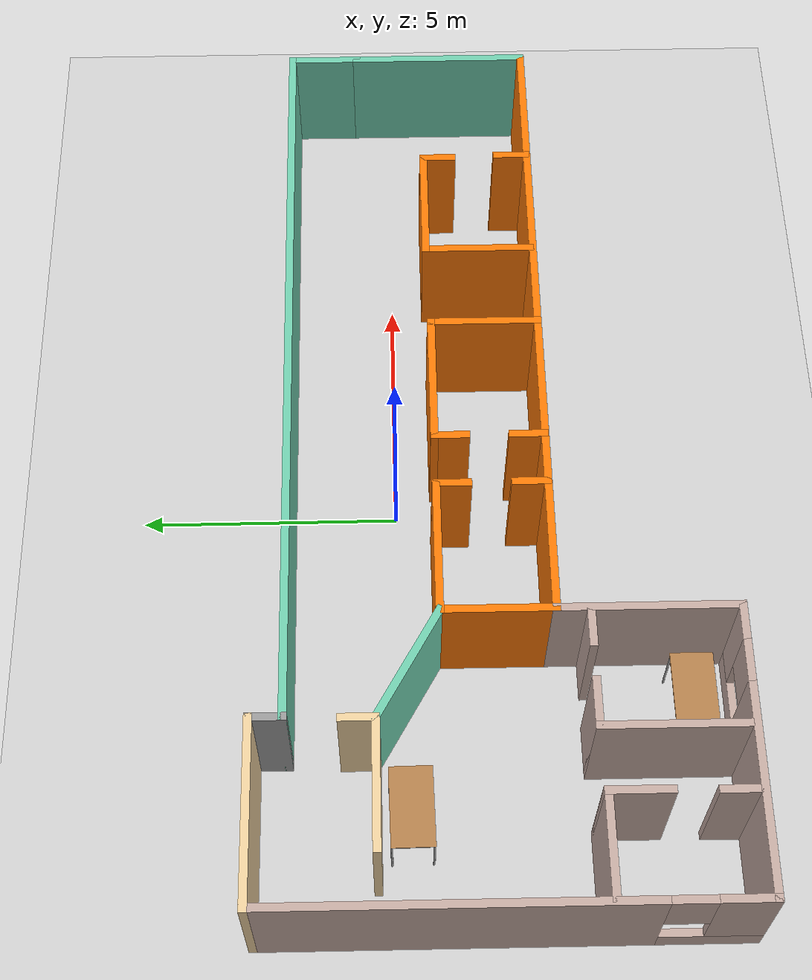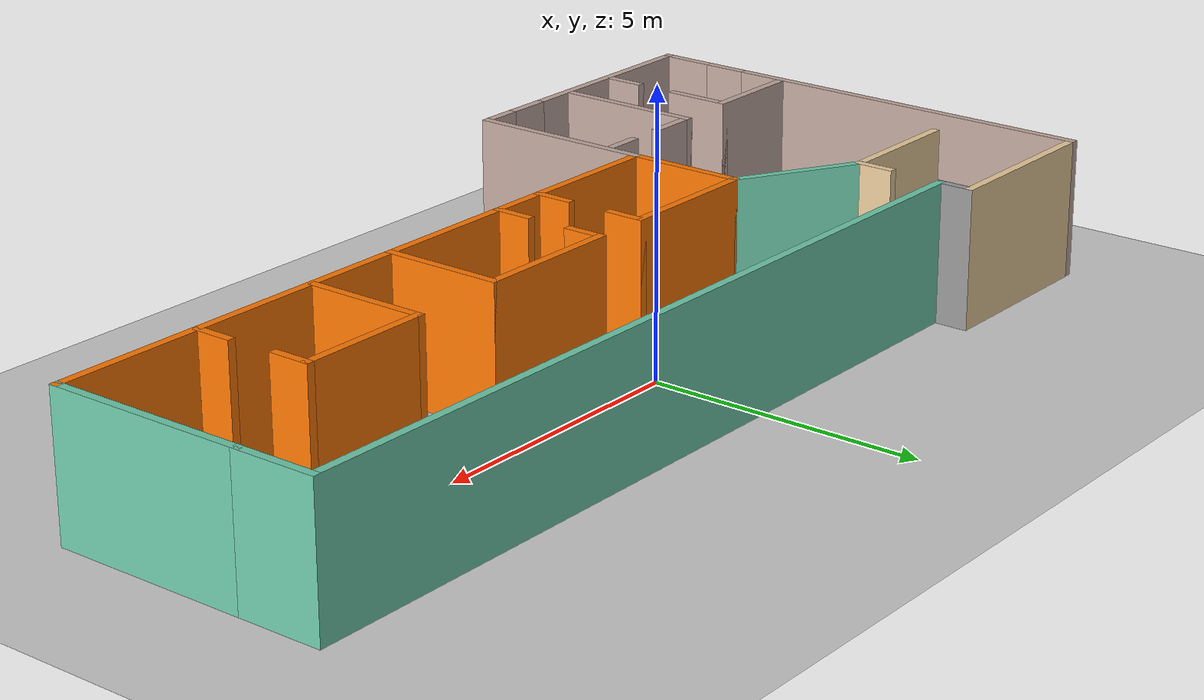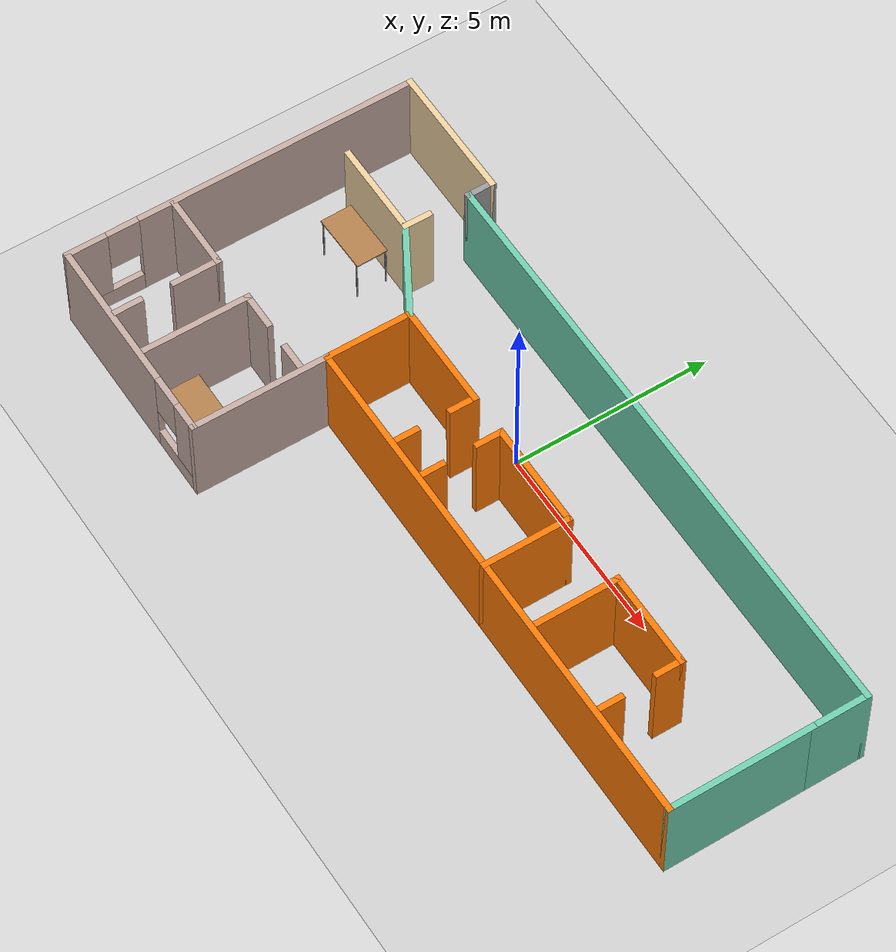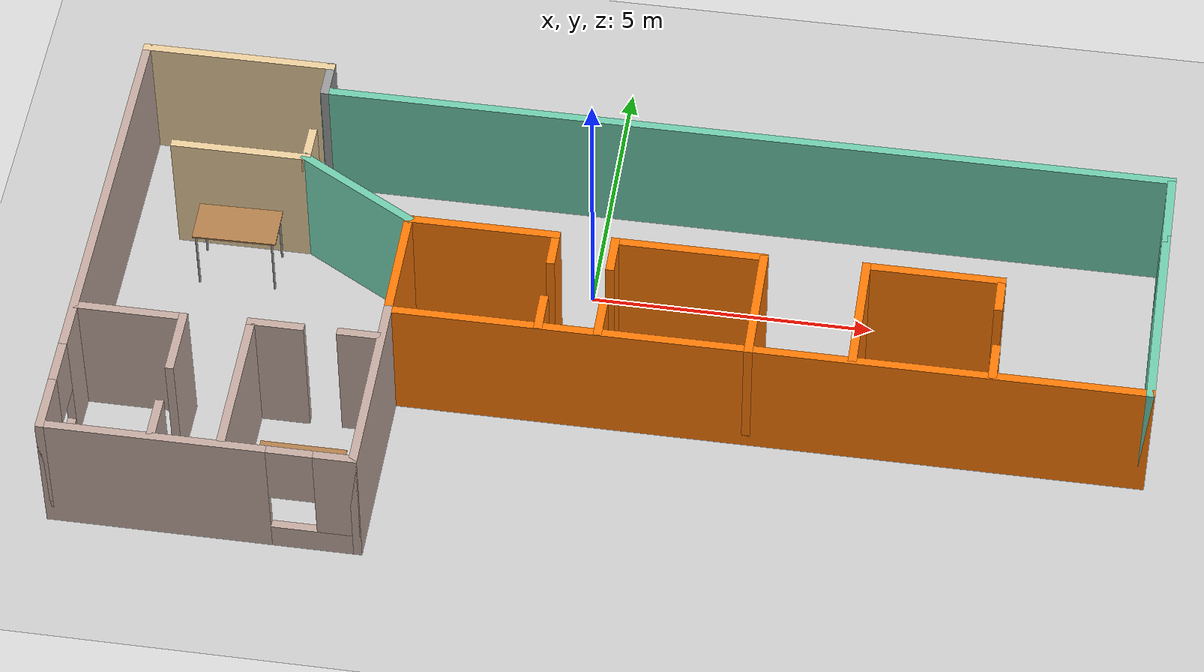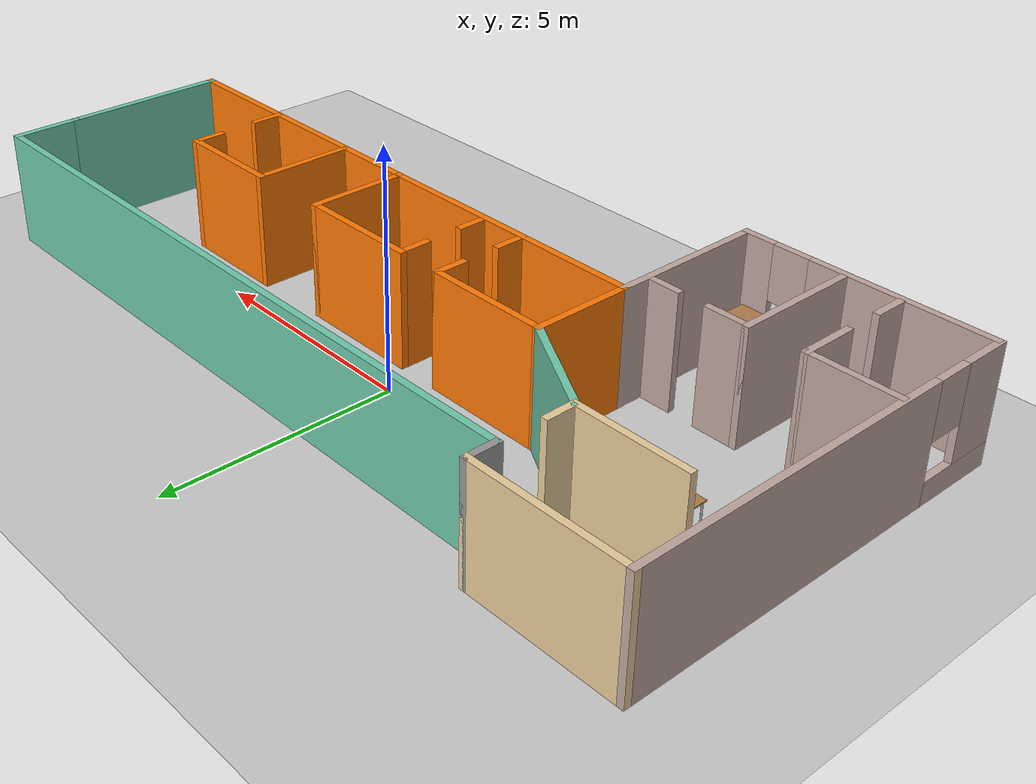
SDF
<sdf version="1.7">
 <world name="default">
  <model name="ground_plane">
   <static>1</static>
   <link name="link">
    <collision name="collision">
     <geometry><plane><normal>0 0 1</normal><size>100 100</size></plane></geometry>
     <surface>
      <contact><collide_bitmask>65535</collide_bitmask></contact>
      <friction><ode><mu>100</mu><mu2>50</mu2></ode></friction>
     </surface>
    </collision>
    <visual name="visual">
     <cast_shadows>0</cast_shadows>
     <geometry><plane><normal>0 0 1</normal><size>100 100</size></plane></geometry>
     <material>
      <script><uri>file://media/materials/scripts/gazebo.material</uri><name>Gazebo/Grey</name></script>
     </material>
    </visual>
   </link>
  </model>
  <model name="Building">
   <pose>0.744331 -1.77373 0 0 -0 0</pose>
   <link name="Wall_101">
    <collision name="Wall_101_Collision">
     <geometry><box><size>3.5 0.15 2.5</size></box></geometry>
     <pose>0 0 1.25 0 -0 0</pose>
    </collision>
    <visual name="Wall_101_Visual">
     <pose>0 0 1.25 0 -0 0</pose>
     <geometry><box><size>3.5 0.15 2.5</size></box></geometry>
     <material>
      <script><uri>file://media/materials/scripts/gazebo.material</uri><name>Gazebo/Grey</name></script>
      <ambient>0.921569 0.807843 0.615686 1</ambient>
     </material>
     <meta><layer>0</layer></meta>
    </visual>
    <pose>-7.55 4.425 0 0 -0 0</pose>
   </link>
   <link name="Wall_102">
    <collision name="Wall_102_Collision">
     <geometry><box><size>0.75 0.15 2.5</size></box></geometry>
     <pose>0 0 1.25 0 -0 0</pose>
    </collision>
    <visual name="Wall_102_Visual">
     <pose>0 0 1.25 0 -0 0</pose>
     <geometry><box><size>0.75 0.15 2.5</size></box></geometry>
     <material>
      <script><uri>file://media/materials/scripts/gazebo.material</uri><name>Gazebo/Grey</name></script>
      <ambient>1 1 1 1</ambient>
     </material>
     <meta><layer>0</layer></meta>
    </visual>
    <pose>-5.875 4.125 0 0 -0 -1.5708</pose>
   </link>
   <link name="Wall_109">
    <collision name="Wall_109_Collision">
     <geometry><box><size>2.5 0.15 2.5</size></box></geometry>
     <pose>0 0 1.25 0 -0 0</pose>
    </collision>
    <visual name="Wall_109_Visual">
     <pose>0 0 1.25 0 -0 0</pose>
     <geometry><box><size>2.5 0.15 2.5</size></box></geometry>
     <material>
      <script><uri>file://media/materials/scripts/gazebo.material</uri><name>Gazebo/Grey</name></script>
      <ambient>0.435294 0.796078 0.67451 1</ambient>
     </material>
     <meta><layer>0</layer></meta>
    </visual>
    <pose>-4.89258 1.6125 0 0 -0 2.61799</pose>
   </link>
   <link name="Wall_110">
    <collision name="Wall_110_Collision">
     <geometry><box><size>2.5 0.15 2.5</size></box></geometry>
     <pose>0 0 1.25 0 -0 0</pose>
    </collision>
    <visual name="Wall_110_Visual">
     <pose>0 0 1.25 0 -0 0</pose>
     <geometry><box><size>2.5 0.15 2.5</size></box></geometry>
     <material>
      <script><uri>file://media/materials/scripts/gazebo.material</uri><name>Gazebo/Grey</name></script>
      <ambient>0.921569 0.807843 0.615686 1</ambient>
     </material>
     <meta><layer>0</layer></meta>
    </visual>
    <pose>-7.08516 2.2 0 0 -0 3.14159</pose>
   </link>
   <link name="Wall_112">
    <collision name="Wall_112_Collision">
     <geometry><box><size>0.75 0.15 2.5</size></box></geometry>
     <pose>0 0 1.25 0 -0 0</pose>
    </collision>
    <visual name="Wall_112_Visual">
     <pose>0 0 1.25 0 -0 0</pose>
     <geometry><box><size>0.75 0.15 2.5</size></box></geometry>
     <material>
      <script><uri>file://media/materials/scripts/gazebo.material</uri><name>Gazebo/Grey</name></script>
      <ambient>0.921569 0.807843 0.615686 1</ambient>
     </material>
     <meta><layer>0</layer></meta>
    </visual>
    <pose>-5.91016 2.5 0 0 -0 1.5708</pose>
   </link>
   <link name="Wall_125">
    <collision name="Wall_125_Collision">
     <geometry><box><size>15.25 0.15 2.5</size></box></geometry>
     <pose>0 0 1.25 0 -0 0</pose>
    </collision>
    <visual name="Wall_125_Visual">
     <pose>0 0 1.25 0 -0 0</pose>
     <geometry><box><size>15.25 0.15 2.5</size></box></geometry>
     <material>
      <script><uri>file://media/materials/scripts/gazebo.material</uri><name>Gazebo/Grey</name></script>
      <ambient>0.435294 0.796078 0.67451 1</ambient>
     </material>
     <meta><layer>0</layer></meta>
    </visual>
    <pose>1.675 3.825 0 0 -0 0</pose>
   </link>
   <link name="Wall_126">
    <collision name="Wall_126_Collision">
     <geometry><box><size>1.51891 0.15 2.5</size></box></geometry>
     <pose>0 0 1.25 0 -0 0</pose>
    </collision>
    <visual name="Wall_126_Visual">
     <pose>0 0 1.25 0 -0 0</pose>
     <geometry><box><size>1.51891 0.15 2.5</size></box></geometry>
     <material>
      <script><uri>file://media/materials/scripts/gazebo.material</uri><name>Gazebo/Grey</name></script>
      <ambient>0.435294 0.796078 0.67451 1</ambient>
     </material>
     <meta><layer>0</layer></meta>
    </visual>
    <pose>9.225 3.14054 0 0 -0 -1.5708</pose>
   </link>
   <link name="Wall_139">
    <collision name="Wall_139_Collision">
     <geometry><box><size>2.75 0.15 2.5</size></box></geometry>
     <pose>0 0 1.25 0 -0 0</pose>
    </collision>
    <visual name="Wall_139_Visual">
     <pose>0 0 1.25 0 -0 0</pose>
     <geometry><box><size>2.75 0.15 2.5</size></box></geometry>
     <material>
      <script><uri>file://media/materials/scripts/gazebo.material</uri><name>Gazebo/Grey</name></script>
      <ambient>0.760784 0.662745 0.627451 1</ambient>
     </material>
     <meta><layer>0</layer></meta>
    </visual>
    <pose>-6.14157 -2.98957 0 0 -0 1.5708</pose>
   </link>
   <link name="Wall_143">
    <collision name="Wall_143_Collision">
     <geometry><box><size>0.75 0.15 2.5</size></box></geometry>
     <pose>0 0 1.25 0 -0 0</pose>
    </collision>
    <visual name="Wall_143_Visual">
     <pose>0 0 1.25 0 -0 0</pose>
     <geometry><box><size>0.75 0.15 2.5</size></box></geometry>
     <material>
      <script><uri>file://media/materials/scripts/gazebo.material</uri><name>Gazebo/Grey</name></script>
      <ambient>0.760784 0.662745 0.627451 1</ambient>
     </material>
     <meta><layer>0</layer></meta>
    </visual>
    <pose>-4.27222 -1.69272 0 0 -0 3.14159</pose>
   </link>
   <link name="Wall_146">
    <collision name="Wall_146_Collision">
     <geometry><box><size>2 0.15 2.5</size></box></geometry>
     <pose>0 0 1.25 0 -0 0</pose>
    </collision>
    <visual name="Wall_146_Visual">
     <pose>0 0 1.25 0 -0 0</pose>
     <geometry><box><size>2 0.15 2.5</size></box></geometry>
     <material>
      <script><uri>file://media/materials/scripts/gazebo.material</uri><name>Gazebo/Grey</name></script>
      <ambient>0.760784 0.662745 0.627451 1</ambient>
     </material>
     <meta><layer>0</layer></meta>
    </visual>
    <pose>-8.24301 -1.74784 0 0 -0 0</pose>
   </link>
   <link name="Wall_147">
    <collision name="Wall_147_Collision">
     <geometry><box><size>1.25 0.15 2.5</size></box></geometry>
     <pose>0 0 1.25 0 -0 0</pose>
    </collision>
    <visual name="Wall_147_Visual">
     <pose>0 0 1.25 0 -0 0</pose>
     <geometry><box><size>1.25 0.15 2.5</size></box></geometry>
     <material>
      <script><uri>file://media/materials/scripts/gazebo.material</uri><name>Gazebo/Grey</name></script>
      <ambient>0.760784 0.662745 0.627451 1</ambient>
     </material>
     <meta><layer>0</layer></meta>
    </visual>
    <pose>-7.31801 -2.29784 0 0 -0 -1.5708</pose>
   </link>
   <link name="Wall_150">
    <collision name="Wall_150_Collision">
     <geometry><box><size>0.75 0.15 2.5</size></box></geometry>
     <pose>0 0 1.25 0 -0 0</pose>
    </collision>
    <visual name="Wall_150_Visual">
     <pose>0 0 1.25 0 -0 0</pose>
     <geometry><box><size>0.75 0.15 2.5</size></box></geometry>
     <material>
      <script><uri>file://media/materials/scripts/gazebo.material</uri><name>Gazebo/Grey</name></script>
      <ambient>0.760784 0.662745 0.627451 1</ambient>
     </material>
     <meta><layer>0</layer></meta>
    </visual>
    <pose>-7.33501 -4.0068 0 0 -0 -1.5708</pose>
   </link>
   <link name="Wall_152">
    <collision name="Wall_152_Collision">
     <geometry><box><size>1 0.15 2.5</size></box></geometry>
     <pose>0 0 1.25 0 -0 0</pose>
    </collision>
    <visual name="Wall_152_Visual">
     <pose>0 0 1.25 0 -0 0</pose>
     <geometry><box><size>1 0.15 2.5</size></box></geometry>
     <material>
      <script><uri>file://media/materials/scripts/gazebo.material</uri><name>Gazebo/Grey</name></script>
      <ambient>0.760784 0.662745 0.627451 1</ambient>
     </material>
     <meta><layer>0</layer></meta>
    </visual>
    <pose>-5.71657 -1.68957 0 0 -0 0</pose>
   </link>
   <link name="Wall_21">
    <pose>-6.55 -4.425 0 0 -0 0</pose>
    <visual name="Wall_21_Visual_0">
     <pose>-0.779518 0 1.25 0 -0 0</pose>
     <geometry><box><size>3.94096 0.15 2.5</size></box></geometry>
     <material>
      <script><uri>file://media/materials/scripts/gazebo.material</uri><name>Gazebo/Grey</name></script>
      <ambient>0.760784 0.662745 0.627451 1</ambient>
     </material>
     <meta><layer>0</layer></meta>
    </visual>
    <collision name="Wall_21_Collision_0">
     <geometry><box><size>3.94096 0.15 2.5</size></box></geometry>
     <pose>-0.779518 0 1.25 0 -0 0</pose>
    </collision>
    <visual name="Wall_21_Visual_1">
     <pose>1.97048 0 0.25 0 -0 0</pose>
     <geometry><box><size>1.55904 0.15 0.5</size></box></geometry>
     <material>
      <script><uri>file://media/materials/scripts/gazebo.material</uri><name>Gazebo/Grey</name></script>
      <ambient>0.760784 0.662745 0.627451 1</ambient>
     </material>
     <meta><layer>0</layer></meta>
    </visual>
    <collision name="Wall_21_Collision_1">
     <geometry><box><size>1.55904 0.15 0.5</size></box></geometry>
     <pose>1.97048 0 0.25 0 -0 0</pose>
    </collision>
    <visual name="Wall_21_Visual_2">
     <pose>2.37048 0 1.5 0 -0 0</pose>
     <geometry><box><size>0.759036 0.15 2</size></box></geometry>
     <material>
      <script><uri>file://media/materials/scripts/gazebo.material</uri><name>Gazebo/Grey</name></script>
      <ambient>0.760784 0.662745 0.627451 1</ambient>
     </material>
     <meta><layer>0</layer></meta>
    </visual>
    <collision name="Wall_21_Collision_2">
     <geometry><box><size>0.759036 0.15 2</size></box></geometry>
     <pose>2.37048 0 1.5 0 -0 0</pose>
    </collision>
    <visual name="Wall_21_Visual_3">
     <pose>1.59096 0 1.9 0 -0 0</pose>
     <geometry><box><size>0.8 0.15 1.2</size></box></geometry>
     <material>
      <script><uri>file://media/materials/scripts/gazebo.material</uri><name>Gazebo/Grey</name></script>
      <ambient>0.760784 0.662745 0.627451 1</ambient>
     </material>
     <meta><layer>0</layer></meta>
    </visual>
    <collision name="Wall_21_Collision_3">
     <geometry><box><size>0.8 0.15 1.2</size></box></geometry>
     <pose>1.59096 0 1.9 0 -0 0</pose>
    </collision>
   </link>
   <link name="Wall_23">
    <collision name="Wall_23_Collision">
     <geometry><box><size>3.5 0.15 2.5</size></box></geometry>
     <pose>0 0 1.25 0 -0 0</pose>
    </collision>
    <visual name="Wall_23_Visual">
     <pose>0 0 1.25 0 -0 0</pose>
     <geometry><box><size>3.5 0.15 2.5</size></box></geometry>
     <material>
      <script><uri>file://media/materials/scripts/gazebo.material</uri><name>Gazebo/Grey</name></script>
      <ambient>0.760784 0.662745 0.627451 1</ambient>
     </material>
     <meta><layer>0</layer></meta>
    </visual>
    <pose>-3.875 -2.75 0 0 -0 1.5708</pose>
   </link>
   <link name="Wall_24">
    <collision name="Wall_24_Collision">
     <geometry><box><size>13.25 0.15 2.5</size></box></geometry>
     <pose>0 0 1.25 0 -0 0</pose>
    </collision>
    <visual name="Wall_24_Visual">
     <pose>0 0 1.25 0 -0 0</pose>
     <geometry><box><size>13.25 0.15 2.5</size></box></geometry>
     <material>
      <script><uri>file://media/materials/scripts/gazebo.material</uri><name>Gazebo/Grey</name></script>
      <ambient>0.996078 0.47451 0.0196078 1</ambient>
     </material>
     <meta><layer>0</layer></meta>
    </visual>
    <pose>2.675 -1.075 0 0 -0 0</pose>
   </link>
   <link name="Wall_25">
    <collision name="Wall_25_Collision">
     <geometry><box><size>3.68109 0.15 2.5</size></box></geometry>
     <pose>0 0 1.25 0 -0 0</pose>
    </collision>
    <visual name="Wall_25_Visual">
     <pose>0 0 1.25 0 -0 0</pose>
     <geometry><box><size>3.68109 0.15 2.5</size></box></geometry>
     <material>
      <script><uri>file://media/materials/scripts/gazebo.material</uri><name>Gazebo/Grey</name></script>
      <ambient>0.435294 0.796078 0.67451 1</ambient>
     </material>
     <meta><layer>0</layer></meta>
    </visual>
    <pose>9.225 0.690545 0 0 -0 1.5708</pose>
   </link>
   <link name="Wall_38">
    <collision name="Wall_38_Collision">
     <geometry><box><size>2.25 0.15 2.5</size></box></geometry>
     <pose>0 0 1.25 0 -0 0</pose>
    </collision>
    <visual name="Wall_38_Visual">
     <pose>0 0 1.25 0 -0 0</pose>
     <geometry><box><size>2.25 0.15 2.5</size></box></geometry>
     <material>
      <script><uri>file://media/materials/scripts/gazebo.material</uri><name>Gazebo/Grey</name></script>
      <ambient>0.996078 0.47451 0.0196078 1</ambient>
     </material>
     <meta><layer>0</layer></meta>
    </visual>
    <pose>-3.875 -0.025 0 0 -0 1.5708</pose>
   </link>
   <link name="Wall_39">
    <collision name="Wall_39_Collision">
     <geometry><box><size>2.75 0.15 2.5</size></box></geometry>
     <pose>0 0 1.25 0 -0 0</pose>
    </collision>
    <visual name="Wall_39_Visual">
     <pose>0 0 1.25 0 -0 0</pose>
     <geometry><box><size>2.75 0.15 2.5</size></box></geometry>
     <material>
      <script><uri>file://media/materials/scripts/gazebo.material</uri><name>Gazebo/Grey</name></script>
      <ambient>0.996078 0.47451 0.0196078 1</ambient>
     </material>
     <meta><layer>0</layer></meta>
    </visual>
    <pose>-2.575 1.025 0 0 -0 0</pose>
   </link>
   <link name="Wall_4">
    <pose>-9.225 -0 0 0 -0 -1.5708</pose>
    <visual name="Wall_4_Visual_0">
     <pose>-0.927991 0 1.25 0 -0 0</pose>
     <geometry><box><size>7.14402 0.15 2.5</size></box></geometry>
     <material>
      <script><uri>file://media/materials/scripts/gazebo.material</uri><name>Gazebo/Grey</name></script>
      <ambient>0.760784 0.662745 0.627451 1</ambient>
     </material>
     <meta><layer>0</layer></meta>
    </visual>
    <collision name="Wall_4_Collision_0">
     <geometry><box><size>7.14402 0.15 2.5</size></box></geometry>
     <pose>-0.927991 0 1.25 0 -0 0</pose>
    </collision>
    <visual name="Wall_4_Visual_1">
     <pose>3.57201 0 0.25 0 -0 0</pose>
     <geometry><box><size>1.85598 0.15 0.5</size></box></geometry>
     <material>
      <script><uri>file://media/materials/scripts/gazebo.material</uri><name>Gazebo/Grey</name></script>
      <ambient>0.760784 0.662745 0.627451 1</ambient>
     </material>
     <meta><layer>0</layer></meta>
    </visual>
    <collision name="Wall_4_Collision_1">
     <geometry><box><size>1.85598 0.15 0.5</size></box></geometry>
     <pose>3.57201 0 0.25 0 -0 0</pose>
    </collision>
    <visual name="Wall_4_Visual_2">
     <pose>3.97201 0 1.5 0 -0 0</pose>
     <geometry><box><size>1.05598 0.15 2</size></box></geometry>
     <material>
      <script><uri>file://media/materials/scripts/gazebo.material</uri><name>Gazebo/Grey</name></script>
      <ambient>0.760784 0.662745 0.627451 1</ambient>
     </material>
     <meta><layer>0</layer></meta>
    </visual>
    <collision name="Wall_4_Collision_2">
     <geometry><box><size>1.05598 0.15 2</size></box></geometry>
     <pose>3.97201 0 1.5 0 -0 0</pose>
    </collision>
    <visual name="Wall_4_Visual_3">
     <pose>3.04402 0 1.9 0 -0 0</pose>
     <geometry><box><size>0.8 0.15 1.2</size></box></geometry>
     <material>
      <script><uri>file://media/materials/scripts/gazebo.material</uri><name>Gazebo/Grey</name></script>
      <ambient>0.760784 0.662745 0.627451 1</ambient>
     </material>
     <meta><layer>0</layer></meta>
    </visual>
    <collision name="Wall_4_Collision_3">
     <geometry><box><size>0.8 0.15 1.2</size></box></geometry>
     <pose>3.04402 0 1.9 0 -0 0</pose>
    </collision>
   </link>
   <link name="Wall_40">
    <collision name="Wall_40_Collision">
     <geometry><box><size>0.75 0.15 2.5</size></box></geometry>
     <pose>0 0 1.25 0 -0 0</pose>
    </collision>
    <visual name="Wall_40_Visual">
     <pose>0 0 1.25 0 -0 0</pose>
     <geometry><box><size>0.75 0.15 2.5</size></box></geometry>
     <material>
      <script><uri>file://media/materials/scripts/gazebo.material</uri><name>Gazebo/Grey</name></script>
      <ambient>0.996078 0.47451 0.0196078 1</ambient>
     </material>
     <meta><layer>0</layer></meta>
    </visual>
    <pose>-1.275 0.725 0 0 -0 -1.5708</pose>
   </link>
   <link name="Wall_58">
    <collision name="Wall_58_Collision">
     <geometry><box><size>0.75 0.15 2.5</size></box></geometry>
     <pose>0 0 1.25 0 -0 0</pose>
    </collision>
    <visual name="Wall_58_Visual">
     <pose>0 0 1.25 0 -0 0</pose>
     <geometry><box><size>0.75 0.15 2.5</size></box></geometry>
     <material>
      <script><uri>file://media/materials/scripts/gazebo.material</uri><name>Gazebo/Grey</name></script>
      <ambient>0.996078 0.47451 0.0196078 1</ambient>
     </material>
     <meta><layer>0</layer></meta>
    </visual>
    <pose>-0.23631 0.725 0 0 -0 -1.5708</pose>
   </link>
   <link name="Wall_70">
    <collision name="Wall_70_Collision">
     <geometry><box><size>0.75 0.15 2.5</size></box></geometry>
     <pose>0 0 1.25 0 -0 0</pose>
    </collision>
    <visual name="Wall_70_Visual">
     <pose>0 0 1.25 0 -0 0</pose>
     <geometry><box><size>0.75 0.15 2.5</size></box></geometry>
     <material>
      <script><uri>file://media/materials/scripts/gazebo.material</uri><name>Gazebo/Grey</name></script>
      <ambient>0.996078 0.47451 0.0196078 1</ambient>
     </material>
     <meta><layer>0</layer></meta>
    </visual>
    <pose>-1.2639 -0.761486 0 0 -0 1.5708</pose>
   </link>
   <link name="Wall_72">
    <collision name="Wall_72_Collision">
     <geometry><box><size>0.75 0.15 2.5</size></box></geometry>
     <pose>0 0 1.25 0 -0 0</pose>
    </collision>
    <visual name="Wall_72_Visual">
     <pose>0 0 1.25 0 -0 0</pose>
     <geometry><box><size>0.75 0.15 2.5</size></box></geometry>
     <material>
      <script><uri>file://media/materials/scripts/gazebo.material</uri><name>Gazebo/Grey</name></script>
      <ambient>0.996078 0.47451 0.0196078 1</ambient>
     </material>
     <meta><layer>0</layer></meta>
    </visual>
    <pose>-0.23182 -0.762321 0 0 -0 -1.5708</pose>
   </link>
   <link name="Wall_74">
    <collision name="Wall_74_Collision">
     <geometry><box><size>2.75 0.15 2.5</size></box></geometry>
     <pose>0 0 1.25 0 -0 0</pose>
    </collision>
    <visual name="Wall_74_Visual">
     <pose>0 0 1.25 0 -0 0</pose>
     <geometry><box><size>2.75 0.15 2.5</size></box></geometry>
     <material>
      <script><uri>file://media/materials/scripts/gazebo.material</uri><name>Gazebo/Grey</name></script>
      <ambient>0.996078 0.47451 0.0196078 1</ambient>
     </material>
     <meta><layer>0</layer></meta>
    </visual>
    <pose>1.06369 1.025 0 0 -0 0</pose>
   </link>
   <link name="Wall_75">
    <collision name="Wall_75_Collision">
     <geometry><box><size>2.25 0.15 2.5</size></box></geometry>
     <pose>0 0 1.25 0 -0 0</pose>
    </collision>
    <visual name="Wall_75_Visual">
     <pose>0 0 1.25 0 -0 0</pose>
     <geometry><box><size>2.25 0.15 2.5</size></box></geometry>
     <material>
      <script><uri>file://media/materials/scripts/gazebo.material</uri><name>Gazebo/Grey</name></script>
      <ambient>0.996078 0.47451 0.0196078 1</ambient>
     </material>
     <meta><layer>0</layer></meta>
    </visual>
    <pose>2.36369 -0.025 0 0 -0 -1.5708</pose>
   </link>
   <link name="Wall_83">
    <collision name="Wall_83_Collision">
     <geometry><box><size>2.25 0.15 2.5</size></box></geometry>
     <pose>0 0 1.25 0 -0 0</pose>
    </collision>
    <visual name="Wall_83_Visual">
     <pose>0 0 1.25 0 -0 0</pose>
     <geometry><box><size>2.25 0.15 2.5</size></box></geometry>
     <material>
      <script><uri>file://media/materials/scripts/gazebo.material</uri><name>Gazebo/Grey</name></script>
      <ambient>0.996078 0.47451 0.0196078 1</ambient>
     </material>
     <meta><layer>0</layer></meta>
    </visual>
    <pose>4.14244 0.031114 0 0 -0 1.5708</pose>
   </link>
   <link name="Wall_84">
    <collision name="Wall_84_Collision">
     <geometry><box><size>2.5 0.15 2.5</size></box></geometry>
     <pose>0 0 1.25 0 -0 0</pose>
    </collision>
    <visual name="Wall_84_Visual">
     <pose>0 0 1.25 0 -0 0</pose>
     <geometry><box><size>2.5 0.15 2.5</size></box></geometry>
     <material>
      <script><uri>file://media/materials/scripts/gazebo.material</uri><name>Gazebo/Grey</name></script>
      <ambient>0.996078 0.47451 0.0196078 1</ambient>
     </material>
     <meta><layer>0</layer></meta>
    </visual>
    <pose>5.31744 1.08111 0 0 -0 0</pose>
   </link>
   <link name="Wall_85">
    <collision name="Wall_85_Collision">
     <geometry><box><size>0.75 0.15 2.5</size></box></geometry>
     <pose>0 0 1.25 0 -0 0</pose>
    </collision>
    <visual name="Wall_85_Visual">
     <pose>0 0 1.25 0 -0 0</pose>
     <geometry><box><size>0.75 0.15 2.5</size></box></geometry>
     <material>
      <script><uri>file://media/materials/scripts/gazebo.material</uri><name>Gazebo/Grey</name></script>
      <ambient>0.996078 0.47451 0.0196078 1</ambient>
     </material>
     <meta><layer>0</layer></meta>
    </visual>
    <pose>6.49244 0.781114 0 0 -0 -1.5708</pose>
   </link>
   <link name="Wall_88">
    <collision name="Wall_88_Collision">
     <geometry><box><size>0.75 0.15 2.5</size></box></geometry>
     <pose>0 0 1.25 0 -0 0</pose>
    </collision>
    <visual name="Wall_88_Visual">
     <pose>0 0 1.25 0 -0 0</pose>
     <geometry><box><size>0.75 0.15 2.5</size></box></geometry>
     <material>
      <script><uri>file://media/materials/scripts/gazebo.material</uri><name>Gazebo/Grey</name></script>
      <ambient>0.996078 0.47451 0.0196078 1</ambient>
     </material>
     <meta><layer>0</layer></meta>
    </visual>
    <pose>6.53567 -0.750584 0 0 -0 1.5708</pose>
   </link>
   <static>1</static>
  </model>
  <model name="Regular_Table">
   <link name="link_0">
    <inertial>
     <mass>1</mass>
     <inertia>
      <ixx>0.166667</ixx>
      <ixy>0</ixy>
      <ixz>0</ixz>
      <iyy>0.166667</iyy>
      <iyz>0</iyz>
      <izz>0.166667</izz>
     </inertia>
    </inertial>
    <pose>-0 0 1.2 0 -0 0</pose>
    <visual name="visual">
     <geometry><box><size>1.5 0.8 0.03</size></box></geometry>
     <material>
      <lighting>1</lighting>
      <script><uri>file://media/materials/scripts/gazebo.material</uri><name>Gazebo/Wood</name></script>
      <shader type="pixel"><normal_map>__default__</normal_map></shader>
      <ambient>0.3 0.3 0.3 1</ambient>
      <diffuse>0.7 0.7 0.7 1</diffuse>
      <specular>0.01 0.01 0.01 1</specular>
      <emissive>0 0 0 1</emissive>
     </material>
    </visual>
    <collision name="collision">
     <geometry><box><size>1.5 0.8 0.03</size></box></geometry>
     <surface>
      <friction>
       <ode><mu>1</mu><mu2>1</mu2><fdir1>0 0 0</fdir1><slip1>0</slip1><slip2>0</slip2></ode>
       <torsional>
        <coefficient>1</coefficient>
        <patch_radius>0</patch_radius>
        <surface_radius>0</surface_radius>
        <use_patch_radius>1</use_patch_radius>
        <ode><slip>0</slip></ode>
       </torsional>
      </friction>
      <bounce><restitution_coefficient>0</restitution_coefficient><threshold>1e+06</threshold></bounce>
      <contact>
       <collide_without_contact>0</collide_without_contact>
       <collide_without_contact_bitmask>1</collide_without_contact_bitmask>
       <collide_bitmask>1</collide_bitmask>
       <ode>
        <soft_cfm>0</soft_cfm>
        <soft_erp>0.2</soft_erp>
        <kp>1e+13</kp>
        <kd>1</kd>
        <max_vel>0.01</max_vel>
        <min_depth>0</min_depth>
       </ode>
       <bullet>
        <split_impulse>1</split_impulse>
        <split_impulse_penetration_threshold>-0.01</split_impulse_penetration_threshold>
        <soft_cfm>0</soft_cfm>
        <soft_erp>0.2</soft_erp>
        <kp>1e+13</kp>
        <kd>1</kd>
       </bullet>
      </contact>
     </surface>
    </collision>
   </link>
   <link name="link_3">
    <inertial>
     <mass>1</mass>
     <inertia><ixx>0.145833</ixx><ixy>0</ixy><ixz>0</ixz><iyy>0.145833</iyy><iyz>0</iyz><izz>0.125</izz></inertia>
    </inertial>
    <pose>0.68 0.38 0.6 0 -0 0</pose>
    <visual name="visual">
     <geometry><cylinder><radius>0.02</radius><length>1.2</length></cylinder></geometry>
     <material>
      <lighting>1</lighting>
      <script><uri>file://media/materials/scripts/gazebo.material</uri><name>Gazebo/Grey</name></script>
      <shader type="pixel"><normal_map>__default__</normal_map></shader>
      <ambient>0.3 0.3 0.3 1</ambient>
      <diffuse>0.7 0.7 0.7 1</diffuse>
      <specular>0.01 0.01 0.01 1</specular>
      <emissive>0 0 0 1</emissive>
     </material>
    </visual>
    <collision name="collision">
     <geometry><cylinder><radius>0.02</radius><length>1.2</length></cylinder></geometry>
     <surface>
      <friction>
       <ode><mu>1</mu><mu2>1</mu2><fdir1>0 0 0</fdir1><slip1>0</slip1><slip2>0</slip2></ode>
       <torsional>
        <coefficient>1</coefficient>
        <patch_radius>0</patch_radius>
        <surface_radius>0</surface_radius>
        <use_patch_radius>1</use_patch_radius>
        <ode><slip>0</slip></ode>
       </torsional>
      </friction>
      <bounce><restitution_coefficient>0</restitution_coefficient><threshold>1e+06</threshold></bounce>
      <contact>
       <collide_without_contact>0</collide_without_contact>
       <collide_without_contact_bitmask>1</collide_without_contact_bitmask>
       <collide_bitmask>1</collide_bitmask>
       <ode>
        <soft_cfm>0</soft_cfm>
        <soft_erp>0.2</soft_erp>
        <kp>1e+13</kp>
        <kd>1</kd>
        <max_vel>0.01</max_vel>
        <min_depth>0</min_depth>
       </ode>
       <bullet>
        <split_impulse>1</split_impulse>
        <split_impulse_penetration_threshold>-0.01</split_impulse_penetration_threshold>
        <soft_cfm>0</soft_cfm>
        <soft_erp>0.2</soft_erp>
        <kp>1e+13</kp>
        <kd>1</kd>
       </bullet>
      </contact>
     </surface>
    </collision>
   </link>
   <link name="link_3_clone">
    <inertial>
     <mass>1</mass>
     <inertia><ixx>0.145833</ixx><ixy>0</ixy><ixz>0</ixz><iyy>0.145833</iyy><iyz>0</iyz><izz>0.125</izz></inertia>
    </inertial>
    <pose>0.68 -0.38 0.6 0 -0 0</pose>
    <visual name="visual">
     <geometry><cylinder><radius>0.02</radius><length>1.2</length></cylinder></geometry>
     <material>
      <lighting>1</lighting>
      <script><uri>file://media/materials/scripts/gazebo.material</uri><name>Gazebo/Grey</name></script>
      <shader type="pixel"><normal_map>__default__</normal_map></shader>
      <ambient>0.3 0.3 0.3 1</ambient>
      <diffuse>0.7 0.7 0.7 1</diffuse>
      <specular>0.01 0.01 0.01 1</specular>
      <emissive>0 0 0 1</emissive>
     </material>
    </visual>
    <collision name="collision">
     <geometry><cylinder><radius>0.02</radius><length>1.2</length></cylinder></geometry>
     <surface>
      <friction>
       <ode><mu>1</mu><mu2>1</mu2><fdir1>0 0 0</fdir1><slip1>0</slip1><slip2>0</slip2></ode>
       <torsional>
        <coefficient>1</coefficient>
        <patch_radius>0</patch_radius>
        <surface_radius>0</surface_radius>
        <use_patch_radius>1</use_patch_radius>
        <ode><slip>0</slip></ode>
       </torsional>
      </friction>
      <bounce><restitution_coefficient>0</restitution_coefficient><threshold>1e+06</threshold></bounce>
      <contact>
       <collide_without_contact>0</collide_without_contact>
       <collide_without_contact_bitmask>1</collide_without_contact_bitmask>
       <collide_bitmask>1</collide_bitmask>
       <ode>
        <soft_cfm>0</soft_cfm>
        <soft_erp>0.2</soft_erp>
        <kp>1e+13</kp>
        <kd>1</kd>
        <max_vel>0.01</max_vel>
        <min_depth>0</min_depth>
       </ode>
       <bullet>
        <split_impulse>1</split_impulse>
        <split_impulse_penetration_threshold>-0.01</split_impulse_penetration_threshold>
        <soft_cfm>0</soft_cfm>
        <soft_erp>0.2</soft_erp>
        <kp>1e+13</kp>
        <kd>1</kd>
       </bullet>
      </contact>
     </surface>
    </collision>
   </link>
   <link name="link_3_clone_0">
    <inertial>
     <mass>1</mass>
     <inertia><ixx>0.145833</ixx><ixy>0</ixy><ixz>0</ixz><iyy>0.145833</iyy><iyz>0</iyz><izz>0.125</izz></inertia>
    </inertial>
    <pose>-0.68 -0.38 0.6 0 -0 0</pose>
    <visual name="visual">
     <geometry><cylinder><radius>0.02</radius><length>1.2</length></cylinder></geometry>
     <material>
      <lighting>1</lighting>
      <script><uri>file://media/materials/scripts/gazebo.material</uri><name>Gazebo/Grey</name></script>
      <shader type="pixel"><normal_map>__default__</normal_map></shader>
      <ambient>0.3 0.3 0.3 1</ambient>
      <diffuse>0.7 0.7 0.7 1</diffuse>
      <specular>0.01 0.01 0.01 1</specular>
      <emissive>0 0 0 1</emissive>
     </material>
    </visual>
    <collision name="collision">
     <geometry><cylinder><radius>0.02</radius><length>1.2</length></cylinder></geometry>
     <surface>
      <friction>
       <ode><mu>1</mu><mu2>1</mu2><fdir1>0 0 0</fdir1><slip1>0</slip1><slip2>0</slip2></ode>
       <torsional>
        <coefficient>1</coefficient>
        <patch_radius>0</patch_radius>
        <surface_radius>0</surface_radius>
        <use_patch_radius>1</use_patch_radius>
        <ode><slip>0</slip></ode>
       </torsional>
      </friction>
      <bounce><restitution_coefficient>0</restitution_coefficient><threshold>1e+06</threshold></bounce>
      <contact>
       <collide_without_contact>0</collide_without_contact>
       <collide_without_contact_bitmask>1</collide_without_contact_bitmask>
       <collide_bitmask>1</collide_bitmask>
       <ode>
        <soft_cfm>0</soft_cfm>
        <soft_erp>0.2</soft_erp>
        <kp>1e+13</kp>
        <kd>1</kd>
        <max_vel>0.01</max_vel>
        <min_depth>0</min_depth>
       </ode>
       <bullet>
        <split_impulse>1</split_impulse>
        <split_impulse_penetration_threshold>-0.01</split_impulse_penetration_threshold>
        <soft_cfm>0</soft_cfm>
        <soft_erp>0.2</soft_erp>
        <kp>1e+13</kp>
        <kd>1</kd>
       </bullet>
      </contact>
     </surface>
    </collision>
   </link>
   <link name="link_3_clone_clone">
    <inertial>
     <mass>1</mass>
     <inertia><ixx>0.145833</ixx><ixy>0</ixy><ixz>0</ixz><iyy>0.145833</iyy><iyz>0</iyz><izz>0.125</izz></inertia>
    </inertial>
    <pose>-0.68 0.38 0.6 0 -0 0</pose>
    <visual name="visual">
     <geometry><cylinder><radius>0.02</radius><length>1.2</length></cylinder></geometry>
     <material>
      <lighting>1</lighting>
      <script><uri>file://media/materials/scripts/gazebo.material</uri><name>Gazebo/Grey</name></script>
      <shader type="pixel"><normal_map>__default__</normal_map></shader>
      <ambient>0.3 0.3 0.3 1</ambient>
      <diffuse>0.7 0.7 0.7 1</diffuse>
      <specular>0.01 0.01 0.01 1</specular>
      <emissive>0 0 0 1</emissive>
     </material>
    </visual>
    <collision name="collision">
     <geometry><cylinder><radius>0.02</radius><length>1.2</length></cylinder></geometry>
     <surface>
      <friction>
       <ode><mu>1</mu><mu2>1</mu2><fdir1>0 0 0</fdir1><slip1>0</slip1><slip2>0</slip2></ode>
       <torsional>
        <coefficient>1</coefficient>
        <patch_radius>0</patch_radius>
        <surface_radius>0</surface_radius>
        <use_patch_radius>1</use_patch_radius>
        <ode><slip>0</slip></ode>
       </torsional>
      </friction>
      <bounce><restitution_coefficient>0</restitution_coefficient><threshold>1e+06</threshold></bounce>
      <contact>
       <collide_without_contact>0</collide_without_contact>
       <collide_without_contact_bitmask>1</collide_without_contact_bitmask>
       <collide_bitmask>1</collide_bitmask>
       <ode>
        <soft_cfm>0</soft_cfm>
        <soft_erp>0.2</soft_erp>
        <kp>1e+13</kp>
        <kd>1</kd>
        <max_vel>0.01</max_vel>
        <min_depth>0</min_depth>
       </ode>
       <bullet>
        <split_impulse>1</split_impulse>
        <split_impulse_penetration_threshold>-0.01</split_impulse_penetration_threshold>
        <soft_cfm>0</soft_cfm>
        <soft_erp>0.2</soft_erp>
        <kp>1e+13</kp>
        <kd>1</kd>
       </bullet>
      </contact>
     </surface>
    </collision>
   </link>
   <joint name="link_0_JOINT_1" type="fixed">
    <parent>link_0</parent>
    <child>link_3_clone</child>
    <physics>
     <ode><limit><cfm>0</cfm><erp>0.2</erp></limit><suspension><cfm>0</cfm><erp>0.2</erp></suspension></ode>
    </physics>
   </joint>
   <joint name="link_0_JOINT_3" type="fixed">
    <parent>link_0</parent>
    <child>link_3_clone_0</child>
    <physics>
     <ode><limit><cfm>0</cfm><erp>0.2</erp></limit><suspension><cfm>0</cfm><erp>0.2</erp></suspension></ode>
    </physics>
   </joint>
   <joint name="link_0_JOINT_4" type="fixed">
    <parent>link_0</parent>
    <child>link_3</child>
    <physics>
     <ode><limit><cfm>0</cfm><erp>0.2</erp></limit><suspension><cfm>0</cfm><erp>0.2</erp></suspension></ode>
    </physics>
   </joint>
   <joint name="link_0_JOINT_5" type="fixed">
    <parent>link_0</parent>
    <child>link_3_clone_clone</child>
    <physics>
     <ode><limit><cfm>0</cfm><erp>0.2</erp></limit><suspension><cfm>0</cfm><erp>0.2</erp></suspension></ode>
    </physics>
   </joint>
   <static>0</static>
   <pose>-6.35122 -0.186716 -0 -1e-06 -0 0.018196</pose>
  </model>
  <model name="Regular_Table_clone_clone_clone">
   <link name="link_0">
    <inertial>
     <mass>1</mass>
     <inertia>
      <ixx>0.166667</ixx>
      <ixy>0</ixy>
      <ixz>0</ixz>
      <iyy>0.166667</iyy>
      <iyz>0</iyz>
      <izz>0.166667</izz>
     </inertia>
    </inertial>
    <pose>-0 0 1.2 0 -0 0</pose>
    <visual name="visual">
     <geometry><box><size>1.5 0.8 0.03</size></box></geometry>
     <material>
      <lighting>1</lighting>
      <script><uri>file://media/materials/scripts/gazebo.material</uri><name>Gazebo/Wood</name></script>
      <shader type="pixel"><normal_map>__default__</normal_map></shader>
      <ambient>0.3 0.3 0.3 1</ambient>
      <diffuse>0.7 0.7 0.7 1</diffuse>
      <specular>0.01 0.01 0.01 1</specular>
      <emissive>0 0 0 1</emissive>
     </material>
    </visual>
    <collision name="collision">
     <geometry><box><size>1.5 0.8 0.03</size></box></geometry>
     <surface>
      <friction>
       <ode><mu>1</mu><mu2>1</mu2><fdir1>0 0 0</fdir1><slip1>0</slip1><slip2>0</slip2></ode>
       <torsional>
        <coefficient>1</coefficient>
        <patch_radius>0</patch_radius>
        <surface_radius>0</surface_radius>
        <use_patch_radius>1</use_patch_radius>
        <ode><slip>0</slip></ode>
       </torsional>
      </friction>
      <bounce><restitution_coefficient>0</restitution_coefficient><threshold>1e+06</threshold></bounce>
      <contact>
       <collide_without_contact>0</collide_without_contact>
       <collide_without_contact_bitmask>1</collide_without_contact_bitmask>
       <collide_bitmask>1</collide_bitmask>
       <ode>
        <soft_cfm>0</soft_cfm>
        <soft_erp>0.2</soft_erp>
        <kp>1e+13</kp>
        <kd>1</kd>
        <max_vel>0.01</max_vel>
        <min_depth>0</min_depth>
       </ode>
       <bullet>
        <split_impulse>1</split_impulse>
        <split_impulse_penetration_threshold>-0.01</split_impulse_penetration_threshold>
        <soft_cfm>0</soft_cfm>
        <soft_erp>0.2</soft_erp>
        <kp>1e+13</kp>
        <kd>1</kd>
       </bullet>
      </contact>
     </surface>
    </collision>
   </link>
   <link name="link_3">
    <inertial>
     <mass>1</mass>
     <inertia><ixx>0.145833</ixx><ixy>0</ixy><ixz>0</ixz><iyy>0.145833</iyy><iyz>0</iyz><izz>0.125</izz></inertia>
    </inertial>
    <pose>0.68 0.38 0.6 0 -0 0</pose>
    <visual name="visual">
     <geometry><cylinder><radius>0.02</radius><length>1.2</length></cylinder></geometry>
     <material>
      <lighting>1</lighting>
      <script><uri>file://media/materials/scripts/gazebo.material</uri><name>Gazebo/Grey</name></script>
      <shader type="pixel"><normal_map>__default__</normal_map></shader>
      <ambient>0.3 0.3 0.3 1</ambient>
      <diffuse>0.7 0.7 0.7 1</diffuse>
      <specular>0.01 0.01 0.01 1</specular>
      <emissive>0 0 0 1</emissive>
     </material>
    </visual>
    <collision name="collision">
     <geometry><cylinder><radius>0.02</radius><length>1.2</length></cylinder></geometry>
     <surface>
      <friction>
       <ode><mu>1</mu><mu2>1</mu2><fdir1>0 0 0</fdir1><slip1>0</slip1><slip2>0</slip2></ode>
       <torsional>
        <coefficient>1</coefficient>
        <patch_radius>0</patch_radius>
        <surface_radius>0</surface_radius>
        <use_patch_radius>1</use_patch_radius>
        <ode><slip>0</slip></ode>
       </torsional>
      </friction>
      <bounce><restitution_coefficient>0</restitution_coefficient><threshold>1e+06</threshold></bounce>
      <contact>
       <collide_without_contact>0</collide_without_contact>
       <collide_without_contact_bitmask>1</collide_without_contact_bitmask>
       <collide_bitmask>1</collide_bitmask>
       <ode>
        <soft_cfm>0</soft_cfm>
        <soft_erp>0.2</soft_erp>
        <kp>1e+13</kp>
        <kd>1</kd>
        <max_vel>0.01</max_vel>
        <min_depth>0</min_depth>
       </ode>
       <bullet>
        <split_impulse>1</split_impulse>
        <split_impulse_penetration_threshold>-0.01</split_impulse_penetration_threshold>
        <soft_cfm>0</soft_cfm>
        <soft_erp>0.2</soft_erp>
        <kp>1e+13</kp>
        <kd>1</kd>
       </bullet>
      </contact>
     </surface>
    </collision>
   </link>
   <link name="link_3_clone">
    <inertial>
     <mass>1</mass>
     <inertia><ixx>0.145833</ixx><ixy>0</ixy><ixz>0</ixz><iyy>0.145833</iyy><iyz>0</iyz><izz>0.125</izz></inertia>
    </inertial>
    <pose>0.68 -0.38 0.6 0 -0 0</pose>
    <visual name="visual">
     <geometry><cylinder><radius>0.02</radius><length>1.2</length></cylinder></geometry>
     <material>
      <lighting>1</lighting>
      <script><uri>file://media/materials/scripts/gazebo.material</uri><name>Gazebo/Grey</name></script>
      <shader type="pixel"><normal_map>__default__</normal_map></shader>
      <ambient>0.3 0.3 0.3 1</ambient>
      <diffuse>0.7 0.7 0.7 1</diffuse>
      <specular>0.01 0.01 0.01 1</specular>
      <emissive>0 0 0 1</emissive>
     </material>
    </visual>
    <collision name="collision">
     <geometry><cylinder><radius>0.02</radius><length>1.2</length></cylinder></geometry>
     <surface>
      <friction>
       <ode><mu>1</mu><mu2>1</mu2><fdir1>0 0 0</fdir1><slip1>0</slip1><slip2>0</slip2></ode>
       <torsional>
        <coefficient>1</coefficient>
        <patch_radius>0</patch_radius>
        <surface_radius>0</surface_radius>
        <use_patch_radius>1</use_patch_radius>
        <ode><slip>0</slip></ode>
       </torsional>
      </friction>
      <bounce><restitution_coefficient>0</restitution_coefficient><threshold>1e+06</threshold></bounce>
      <contact>
       <collide_without_contact>0</collide_without_contact>
       <collide_without_contact_bitmask>1</collide_without_contact_bitmask>
       <collide_bitmask>1</collide_bitmask>
       <ode>
        <soft_cfm>0</soft_cfm>
        <soft_erp>0.2</soft_erp>
        <kp>1e+13</kp>
        <kd>1</kd>
        <max_vel>0.01</max_vel>
        <min_depth>0</min_depth>
       </ode>
       <bullet>
        <split_impulse>1</split_impulse>
        <split_impulse_penetration_threshold>-0.01</split_impulse_penetration_threshold>
        <soft_cfm>0</soft_cfm>
        <soft_erp>0.2</soft_erp>
        <kp>1e+13</kp>
        <kd>1</kd>
       </bullet>
      </contact>
     </surface>
    </collision>
   </link>
   <link name="link_3_clone_0">
    <inertial>
     <mass>1</mass>
     <inertia><ixx>0.145833</ixx><ixy>0</ixy><ixz>0</ixz><iyy>0.145833</iyy><iyz>0</iyz><izz>0.125</izz></inertia>
    </inertial>
    <pose>-0.68 -0.38 0.6 0 -0 0</pose>
    <visual name="visual">
     <geometry><cylinder><radius>0.02</radius><length>1.2</length></cylinder></geometry>
     <material>
      <lighting>1</lighting>
      <script><uri>file://media/materials/scripts/gazebo.material</uri><name>Gazebo/Grey</name></script>
      <shader type="pixel"><normal_map>__default__</normal_map></shader>
      <ambient>0.3 0.3 0.3 1</ambient>
      <diffuse>0.7 0.7 0.7 1</diffuse>
      <specular>0.01 0.01 0.01 1</specular>
      <emissive>0 0 0 1</emissive>
     </material>
    </visual>
    <collision name="collision">
     <geometry><cylinder><radius>0.02</radius><length>1.2</length></cylinder></geometry>
     <surface>
      <friction>
       <ode><mu>1</mu><mu2>1</mu2><fdir1>0 0 0</fdir1><slip1>0</slip1><slip2>0</slip2></ode>
       <torsional>
        <coefficient>1</coefficient>
        <patch_radius>0</patch_radius>
        <surface_radius>0</surface_radius>
        <use_patch_radius>1</use_patch_radius>
        <ode><slip>0</slip></ode>
       </torsional>
      </friction>
      <bounce><restitution_coefficient>0</restitution_coefficient><threshold>1e+06</threshold></bounce>
      <contact>
       <collide_without_contact>0</collide_without_contact>
       <collide_without_contact_bitmask>1</collide_without_contact_bitmask>
       <collide_bitmask>1</collide_bitmask>
       <ode>
        <soft_cfm>0</soft_cfm>
        <soft_erp>0.2</soft_erp>
        <kp>1e+13</kp>
        <kd>1</kd>
        <max_vel>0.01</max_vel>
        <min_depth>0</min_depth>
       </ode>
       <bullet>
        <split_impulse>1</split_impulse>
        <split_impulse_penetration_threshold>-0.01</split_impulse_penetration_threshold>
        <soft_cfm>0</soft_cfm>
        <soft_erp>0.2</soft_erp>
        <kp>1e+13</kp>
        <kd>1</kd>
       </bullet>
      </contact>
     </surface>
    </collision>
   </link>
   <link name="link_3_clone_clone">
    <inertial>
     <mass>1</mass>
     <inertia><ixx>0.145833</ixx><ixy>0</ixy><ixz>0</ixz><iyy>0.145833</iyy><iyz>0</iyz><izz>0.125</izz></inertia>
    </inertial>
    <pose>-0.68 0.38 0.6 0 -0 0</pose>
    <visual name="visual">
     <geometry><cylinder><radius>0.02</radius><length>1.2</length></cylinder></geometry>
     <material>
      <lighting>1</lighting>
      <script><uri>file://media/materials/scripts/gazebo.material</uri><name>Gazebo/Grey</name></script>
      <shader type="pixel"><normal_map>__default__</normal_map></shader>
      <ambient>0.3 0.3 0.3 1</ambient>
      <diffuse>0.7 0.7 0.7 1</diffuse>
      <specular>0.01 0.01 0.01 1</specular>
      <emissive>0 0 0 1</emissive>
     </material>
    </visual>
    <collision name="collision">
     <geometry><cylinder><radius>0.02</radius><length>1.2</length></cylinder></geometry>
     <surface>
      <friction>
       <ode><mu>1</mu><mu2>1</mu2><fdir1>0 0 0</fdir1><slip1>0</slip1><slip2>0</slip2></ode>
       <torsional>
        <coefficient>1</coefficient>
        <patch_radius>0</patch_radius>
        <surface_radius>0</surface_radius>
        <use_patch_radius>1</use_patch_radius>
        <ode><slip>0</slip></ode>
       </torsional>
      </friction>
      <bounce><restitution_coefficient>0</restitution_coefficient><threshold>1e+06</threshold></bounce>
      <contact>
       <collide_without_contact>0</collide_without_contact>
       <collide_without_contact_bitmask>1</collide_without_contact_bitmask>
       <collide_bitmask>1</collide_bitmask>
       <ode>
        <soft_cfm>0</soft_cfm>
        <soft_erp>0.2</soft_erp>
        <kp>1e+13</kp>
        <kd>1</kd>
        <max_vel>0.01</max_vel>
        <min_depth>0</min_depth>
       </ode>
       <bullet>
        <split_impulse>1</split_impulse>
        <split_impulse_penetration_threshold>-0.01</split_impulse_penetration_threshold>
        <soft_cfm>0</soft_cfm>
        <soft_erp>0.2</soft_erp>
        <kp>1e+13</kp>
        <kd>1</kd>
       </bullet>
      </contact>
     </surface>
    </collision>
   </link>
   <joint name="link_0_JOINT_1" type="fixed">
    <parent>link_0</parent>
    <child>link_3_clone</child>
    <physics>
     <ode><limit><cfm>0</cfm><erp>0.2</erp></limit><suspension><cfm>0</cfm><erp>0.2</erp></suspension></ode>
    </physics>
   </joint>
   <joint name="link_0_JOINT_3" type="fixed">
    <parent>link_0</parent>
    <child>link_3_clone_0</child>
    <physics>
     <ode><limit><cfm>0</cfm><erp>0.2</erp></limit><suspension><cfm>0</cfm><erp>0.2</erp></suspension></ode>
    </physics>
   </joint>
   <joint name="link_0_JOINT_4" type="fixed">
    <parent>link_0</parent>
    <child>link_3</child>
    <physics>
     <ode><limit><cfm>0</cfm><erp>0.2</erp></limit><suspension><cfm>0</cfm><erp>0.2</erp></suspension></ode>
    </physics>
   </joint>
   <joint name="link_0_JOINT_5" type="fixed">
    <parent>link_0</parent>
    <child>link_3_clone_clone</child>
    <physics>
     <ode><limit><cfm>0</cfm><erp>0.2</erp></limit><suspension><cfm>0</cfm><erp>0.2</erp></suspension></ode>
    </physics>
   </joint>
   <static>0</static>
   <pose>-4.24676 -5.40194 -0 2e-06 -1e-06 0.001866</pose>
  </model>
 </world>
</sdf>
